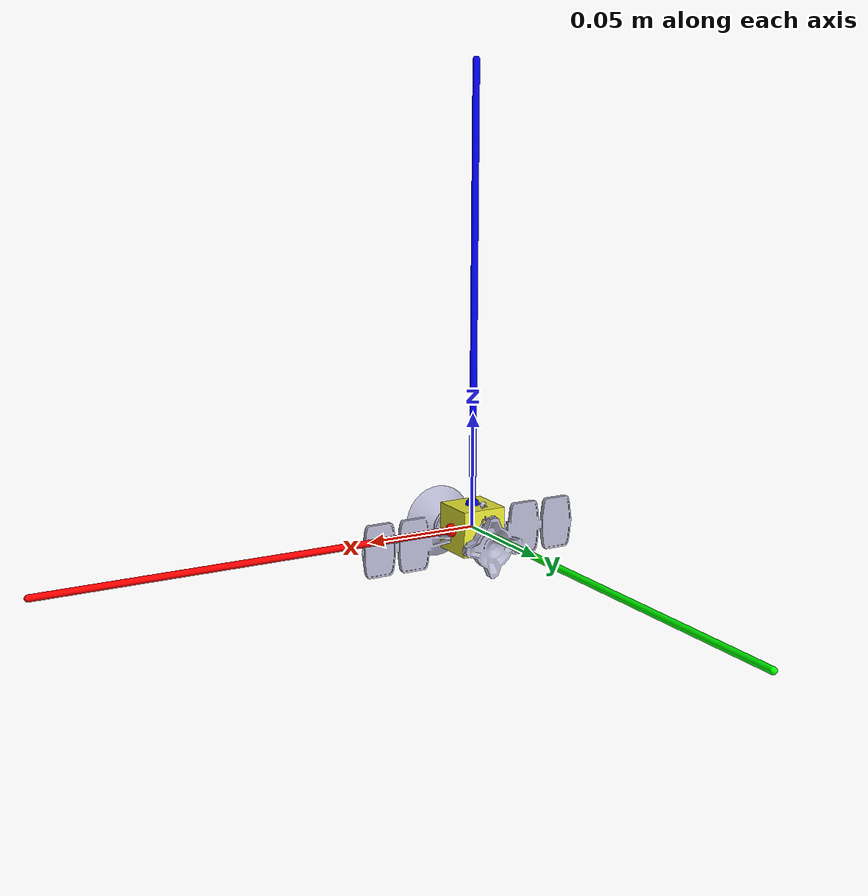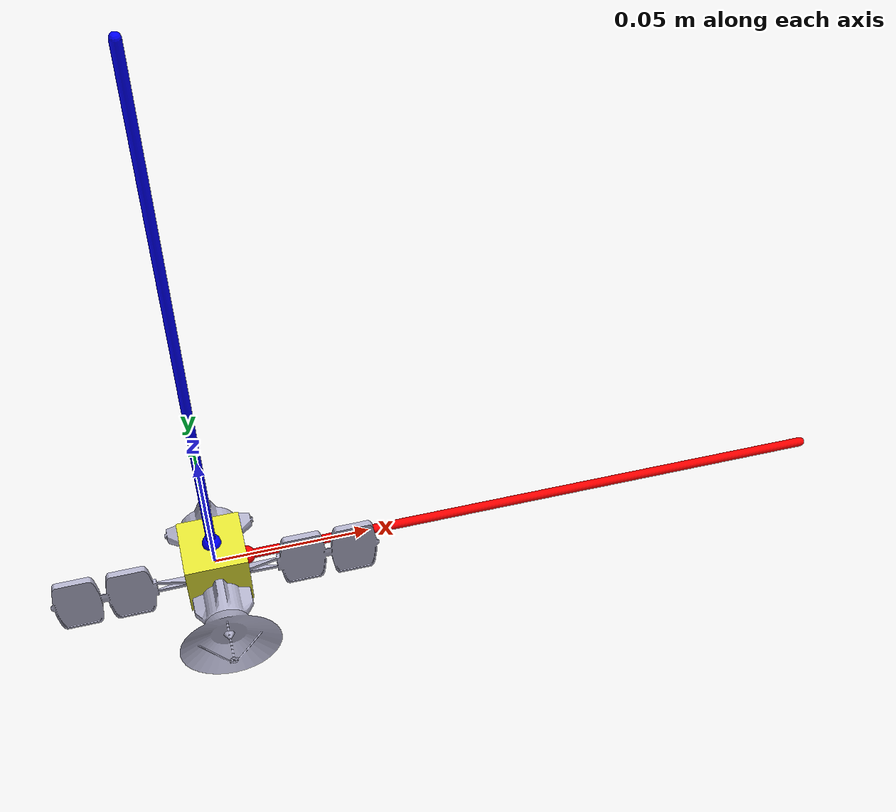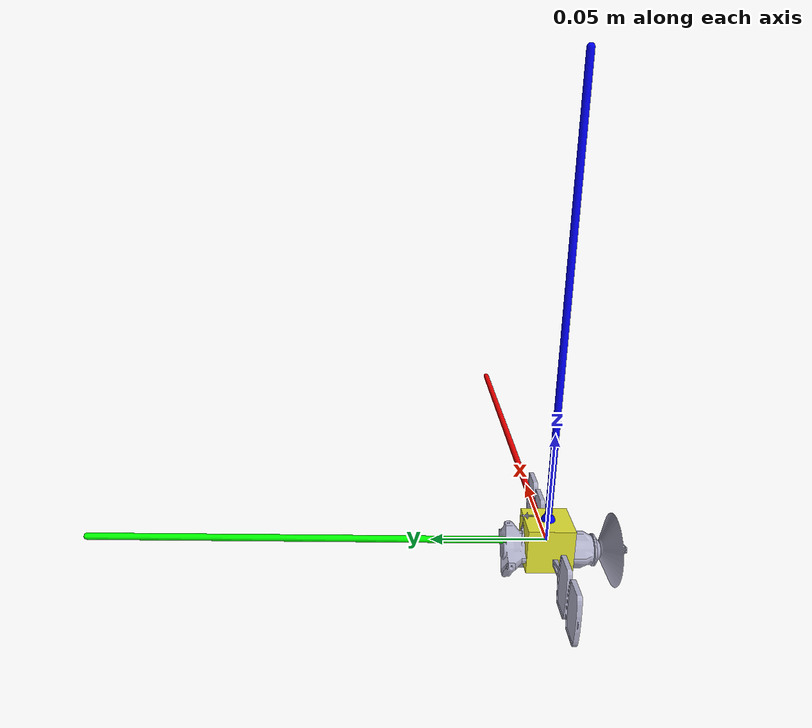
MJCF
<!-- No Earth here anymore. -->
<!-- Just good looking debris and great looking satellites -->

<mujoco model="spacecraft_nd">
  <compiler angle="radian" inertiafromgeom="false"/>
  <option timestep="1e-3" gravity="0 0 0" integrator="implicit"/>

  <default>
    <joint armature="0.0" damping="0.0" stiffness="0"/>
    <geom contype="0" conaffinity="0" friction="0 0 0" rgba="0.8 0.6 0.4 1"/>
    <motor ctrllimited="true" ctrlrange="-100 100"/>
  </default>

  <asset>
      <texture name="skybox_tex" type="skybox" file="textures/stars_cropped.png"/>
      <material name="skybox_mat" texture="skybox_tex" texuniform="true" reflectance="0"/>

      <texture name="earth_tex" type="2d" file="textures/earth_day.png"/>
      <material name="earth_mat" texture="earth_tex" texuniform="true" specular="0.2" shininess="0.5"/>

      <!-- satellite mesh -->
      <mesh name="sat_mesh" file="meshes/sat/Satellite.stl" scale="0.005 0.005 0.005"/>
  </asset>

  <worldbody>
    <!-- Spacecraft 1 -->
    <body name="spacecraft">
      <freejoint name="base6dof"/>
      <geom type="mesh" mesh="sat_mesh" rgba="0.7 0.7 0.8 1" contype="0" conaffinity="0"/>

      <inertial pos="0 0 0" mass="1" diaginertia="1 1 1"/>
      <site name="spacecraft_com" pos="0 0 0" size="0.005" xyaxes="1 0 0 0 1 0"/>
      <geom name="spacecraft_axis_x" type="capsule" fromto="0 0 0  0.2 0 0" size="0.0015" rgba="1 0 0 1"/>
      <geom name="spacecraft_axis_y" type="capsule" fromto="0 0 0  0 0.2 0" size="0.0015" rgba="0 1 0 1"/>
      <geom name="spacecraft_axis_z" type="capsule" fromto="0 0 0  0 0 0.2" size="0.0015" rgba="0 0 1 1"/>
    </body>

    <!-- Spacecraft 2 -->
    <body name="spacecraft2">
      <freejoint name="base6dof2"/>

      <!-- was: sphere -->
      <geom type="mesh" mesh="sat_mesh"
            rgba="0.8 0.2 0.2 1"
            contype="0" conaffinity="0"/>

      <inertial pos="0 0 0" mass="1" diaginertia="1 1 1"/>
      <site name="spacecraft2_com" pos="0 0 0" size="0.005" xyaxes="1 0 0 0 1 0"/>
      <geom name="spacecraft2_axis_x" type="capsule" fromto="0 0 0  0.2 0 0" size="0.0015" rgba="1 0 0 1"/>
      <geom name="spacecraft2_axis_y" type="capsule" fromto="0 0 0  0 0.2 0" size="0.0015" rgba="0 1 0 1"/>
      <geom name="spacecraft2_axis_z" type="capsule" fromto="0 0 0  0 0 0.2" size="0.0015" rgba="0 0 1 1"/>
    </body>

    <!-- Spacecraft 3 -->
    <body name="spacecraft3">
      <freejoint name="base6dof3"/>

      <!-- was: sphere -->
      <geom type="mesh" mesh="sat_mesh"
            rgba="0.2 0.8 0.2 1"
            contype="0" conaffinity="0"/>

      <inertial pos="0 0 0" mass="1" diaginertia="1 1 1"/>
      <site name="spacecraft3_com" pos="0 0 0" size="0.005" xyaxes="1 0 0 0 1 0"/>
      <geom name="spacecraft3_axis_x" type="capsule" fromto="0 0 0  0.2 0 0" size="0.0015" rgba="1 0 0 1"/>
      <geom name="spacecraft3_axis_y" type="capsule" fromto="0 0 0  0 0.2 0" size="0.0015" rgba="0 1 0 1"/>
      <geom name="spacecraft3_axis_z" type="capsule" fromto="0 0 0  0 0 0.2" size="0.0015" rgba="0 0 1 1"/>
    </body>

    <!-- Spacecraft 4 -->
    <body name="spacecraft4">
      <freejoint name="base6dof4"/>

      <!-- was: sphere -->
      <geom type="mesh" mesh="sat_mesh"
            rgba="0.8 0.8 0.2 1"
            contype="0" conaffinity="0"/>

      <inertial pos="0 0 0" mass="1" diaginertia="1 1 1"/>
      <site name="spacecraft4_com" pos="0 0 0" size="0.005" xyaxes="1 0 0 0 1 0"/>
      <geom name="spacecraft4_axis_x" type="capsule" fromto="0 0 0  0.2 0 0" size="0.0015" rgba="1 0 0 1"/>
      <geom name="spacecraft4_axis_y" type="capsule" fromto="0 0 0  0 0.2 0" size="0.0015" rgba="0 1 0 1"/>
      <geom name="spacecraft4_axis_z" type="capsule" fromto="0 0 0  0 0 0.2" size="0.0015" rgba="0 0 1 1"/>
    </body>

    <!-- Spacecraft 5 -->
    <body name="spacecraft5">
      <freejoint name="base6dof5"/>

      <!-- was: sphere -->
      <geom type="mesh" mesh="sat_mesh"
            rgba="0.6 0.4 0.9 1"
            contype="0" conaffinity="0"/>

      <inertial pos="0 0 0" mass="1" diaginertia="1 1 1"/>
      <site name="spacecraft5_com" pos="0 0 0" size="0.005" xyaxes="1 0 0 0 1 0"/>
      <geom name="spacecraft5_axis_x" type="capsule" fromto="0 0 0  0.2 0 0" size="0.0015" rgba="1 0 0 1"/>
      <geom name="spacecraft5_axis_y" type="capsule" fromto="0 0 0  0 0.2 0" size="0.0015" rgba="0 1 0 1"/>
      <geom name="spacecraft5_axis_z" type="capsule" fromto="0 0 0  0 0 0.2" size="0.0015" rgba="0 0 1 1"/>
    </body>

    <light name="sun_light" pos="0 0 5" dir="0 0 -1"
           diffuse="0.5 0.5 0.5" specular="0.1 0.1 0.1" ambient="0 0 0"/>

    <!-- Debris -->
    <body name="debris">
      <freejoint name="debris6dof"/>
      <geom type="box" size="0.01 0.01 0.01" rgba="0.9 0.9 0.2 1"/>

      <inertial pos="0.0 0.01 0" mass="1" diaginertia="1.0 1.0 1.0"/>

      <site name="debris_com" pos="0 0 0"
            size="0.0001" rgba="1 1 0 1"
            xyaxes="1 0 0 0 1 0"/>

      <geom name="debris_axis_x" type="capsule"
            fromto="0 0 0  0.01 0 0"
            size="0.003" rgba="1 0 0 1"/>
      <geom name="debris_axis_y" type="capsule"
            fromto="0 0 0  0 0.01 0"
            size="0.003" rgba="0 1 0 1"/>
      <geom name="debris_axis_z" type="capsule"
            fromto="0 0 0  0 0 0.01"
            size="0.003" rgba="0 0 1 1"/>
    </body>

  </worldbody>

  <!-- actuators unchanged below ... -->
  <actuator>
    <motor name="F_world_x" joint="base6dof" gear="1 0 0 0 0 0"/>
    <motor name="F_world_y" joint="base6dof" gear="0 1 0 0 0 0"/>
    <motor name="F_world_z" joint="base6dof" gear="0 0 1 0 0 0"/>
    <motor name="M_body_x" joint="base6dof" gear="0 0 0 1 0 0"/>
    <motor name="M_body_y" joint="base6dof" gear="0 0 0 0 1 0"/>
    <motor name="M_body_z" joint="base6dof" gear="0 0 0 0 0 1"/>
  </actuator>

  <actuator>
    <motor name="F_world_x2" joint="base6dof" gear="1 0 0 0 0 0"/>
    <motor name="F_world_y2" joint="base6dof" gear="0 1 0 0 0 0"/>
    <motor name="F_world_z2" joint="base6dof" gear="0 0 1 0 0 0"/>
    <motor name="M_body_x2" joint="base6dof" gear="0 0 0 1 0 0"/>
    <motor name="M_body_y2" joint="base6dof" gear="0 0 0 0 1 0"/>
    <motor name="M_body_z2" joint="base6dof" gear="0 0 0 0 0 1"/>
  </actuator>

  <actuator>
    <motor name="F_world_x3" joint="base6dof" gear="1 0 0 0 0 0"/>
    <motor name="F_world_y3" joint="base6dof" gear="0 1 0 0 0 0"/>
    <motor name="F_world_z3" joint="base6dof" gear="0 0 1 0 0 0"/>
    <motor name="M_body_x3" joint="base6dof" gear="0 0 0 1 0 0"/>
    <motor name="M_body_y3" joint="base6dof" gear="0 0 0 0 1 0"/>
    <motor name="M_body_z3" joint="base6dof" gear="0 0 0 0 0 1"/>
  </actuator>

  <actuator>
    <motor name="F_world_x4" joint="base6dof" gear="1 0 0 0 0 0"/>
    <motor name="F_world_y4" joint="base6dof" gear="0 1 0 0 0 0"/>
    <motor name="F_world_z4" joint="base6dof" gear="0 0 1 0 0 0"/>
    <motor name="M_body_x4" joint="base6dof" gear="0 0 0 1 0 0"/>
    <motor name="M_body_y4" joint="base6dof" gear="0 0 0 0 1 0"/>
    <motor name="M_body_z4" joint="base6dof" gear="0 0 0 0 0 1"/>
  </actuator>

  <actuator>
    <motor name="F_world_x5" joint="base6dof" gear="1 0 0 0 0 0"/>
    <motor name="F_world_y5" joint="base6dof" gear="0 1 0 0 0 0"/>
    <motor name="F_world_z5" joint="base6dof" gear="0 0 1 0 0 0"/>
    <motor name="M_body_x5" joint="base6dof" gear="0 0 0 1 0 0"/>
    <motor name="M_body_y5" joint="base6dof" gear="0 0 0 0 1 0"/>
    <motor name="M_body_z5" joint="base6dof" gear="0 0 0 0 0 1"/>
  </actuator>

</mujoco>
